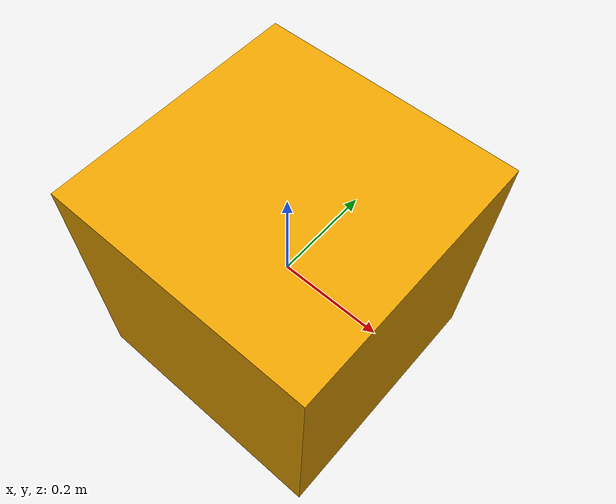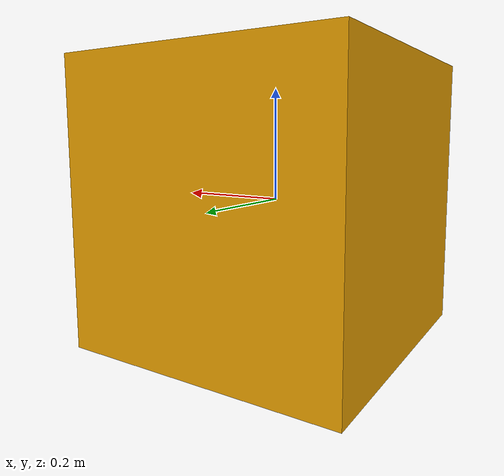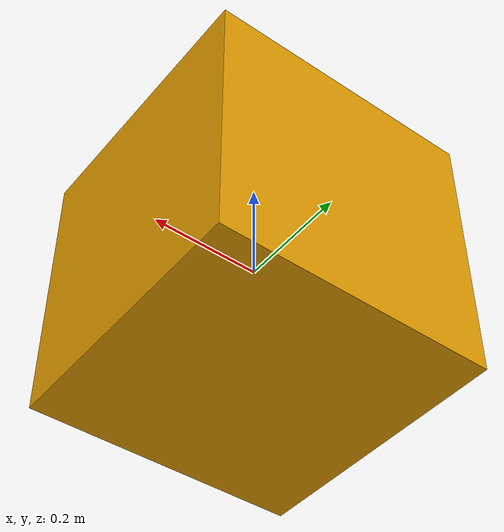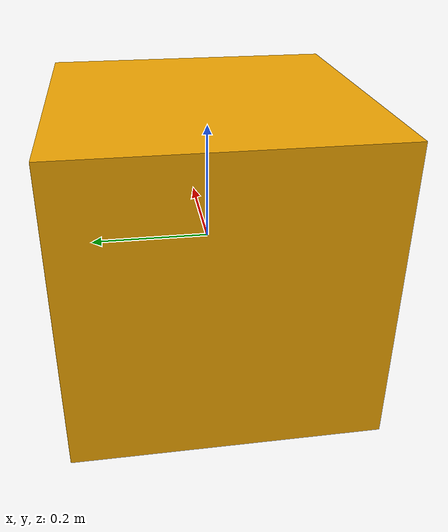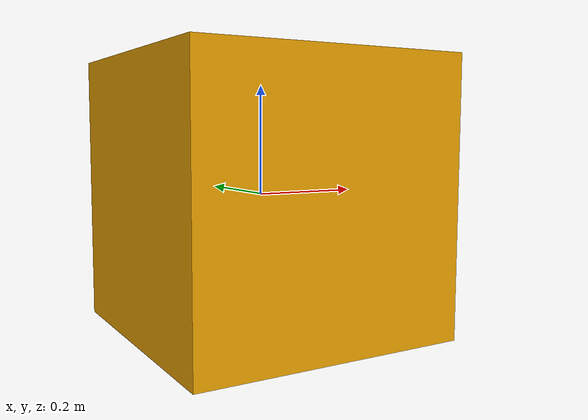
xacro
<?xml version="1.0" encoding="UTF-8"?>
<robot name="lifter" xmlns:xacro="http://ros.org/wiki/xacro">

<link name="base_link">
<visual>
      <origin xyz="0 0 0" rpy="0 0 0" />
      <geometry>
        <box size="0.5 0.5 0.5"></box>
      </geometry>
    </visual>
    <collision>
      <origin xyz="0 0 0" rpy="0 0 0" />
      <geometry>
        <box size="0.5 0.5 0.5"></box>
      </geometry>
    </collision>
    <inertial>
      <origin xyz="0 0 0" rpy="0 0 0" />
      <mass value="289" />
      <inertia ixx="28.034" ixy="0.669" ixz="-2.355"
        iyy="96.827" iyz="0.232"
        izz="108.149" />
    </inertial>
</link>

<link name="lifter_link">
<visual>
      <origin xyz="0 0 0" rpy="0 0 0" />
      <geometry>
        <cylinder length="0.2" radius="0.1"></cylinder>
      </geometry>
    </visual>
    <collision>
      <origin xyz="0 0 0" rpy="0 0 0" />
      <geometry>
        <cylinder length="0.2" radius="0.1"></cylinder>
      </geometry>
    </collision>
    <inertial>
      <origin xyz="0 0 0" rpy="0 0 0" />
      <mass value="289" />
      <inertia ixx="28.034" ixy="0.669" ixz="-2.355"
        iyy="96.827" iyz="0.232"
        izz="108.149" />
    </inertial>
</link>
<joint name="lifter_joint" type="continuous">
    <parent link="base_link"></parent>
    <child link="lifter_link"></child>
    <origin xyz="0 0 0" tpy="0 0 0"></origin>
</joint>

</robot>
